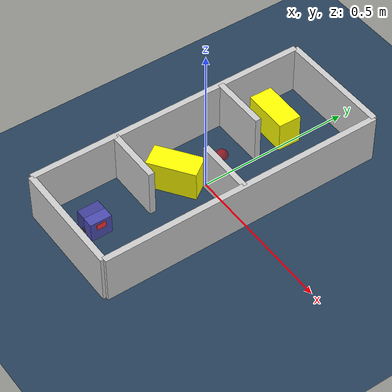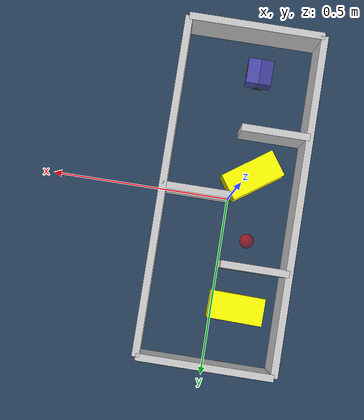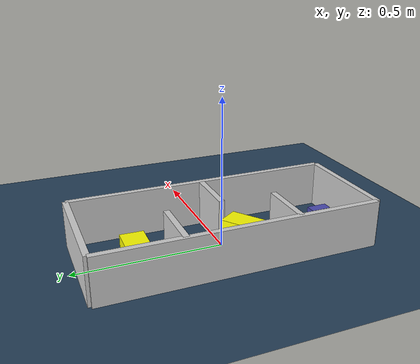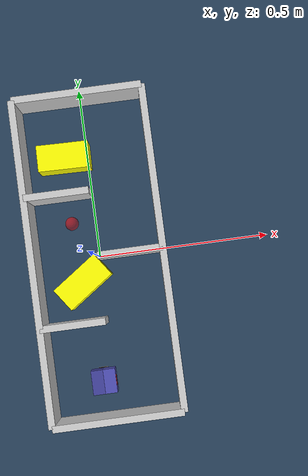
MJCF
<?xml version='1.0' encoding='utf-8'?>
<mujoco model="generated_environment">
  <option timestep="0.002" integrator="implicitfast" cone="elliptic" iterations="100" gravity="0 0 -9.81" />
  <default>
    <geom density="1" />
  </default>
  <asset>
    <texture builtin="gradient" height="3072" rgb1="0.3 0.5 0.7" rgb2="0 0 0" type="skybox" width="512" />
    <texture builtin="checker" height="300" mark="edge" markrgb="0.8 0.8 0.8" name="groundplane" rgb1="0.2 0.3 0.4" rgb2="0.1 0.2 0.3" type="2d" width="300" />
    <material name="groundplane" reflectance="0.2" texrepeat="5 5" texture="groundplane" texuniform="true" />
    <material name="robot" rgba="1.0 1.0 0.0 1.0" />
  </asset>
  <worldbody>
    <light dir="0 0 -1" directional="true" pos="0 0 1.5" />
    <geom condim="4" friction="0.5 0.005 0.001" material="groundplane" name="floor" size="0 0 0.05" type="plane" />
    <body name="walls">
      <geom name="wall_1" condim="4" pos="-0.186400 0.000000 0.080000" rgba="0.800000011920929 0.800000011920929 0.800000011920929 1.0" size="0.010000 0.466000 0.080000" type="box" />
      <geom name="wall_2" condim="4" pos="0.186400 0.000000 0.080000" rgba="0.800000011920929 0.800000011920929 0.800000011920929 1.0" size="0.010000 0.466000 0.080000" type="box" />
      <geom name="wall_3" condim="4" pos="0.000000 -0.466000 0.080000" rgba="0.800000011920929 0.800000011920929 0.800000011920929 1.0" size="0.186400 0.010000 0.080000" type="box" />
      <geom name="wall_4" condim="4" pos="0.000000 0.466000 0.080000" rgba="0.800000011920929 0.800000011920929 0.800000011920929 1.0" size="0.186400 0.010000 0.080000" type="box" />
      <geom name="wall_5" condim="4" pos="0.093200 0.000000 0.080000" rgba="0.800000011920929 0.800000011920929 0.800000011920929 1.0" size="0.093200 0.010000 0.080000" type="box" />
      <geom name="wall_6" condim="4" pos="-0.093200 -0.186400 0.080000" rgba="0.800000011920929 0.800000011920929 0.800000011920929 1.0" size="0.093200 0.010000 0.080000" type="box" />
      <geom name="wall_7" condim="4" pos="-0.093200 0.186400 0.080000" rgba="0.800000011920929 0.800000011920929 0.800000011920929 1.0" size="0.093200 0.010000 0.080000" type="box" />
    </body>
    <body name="car" pos="-0.03139999999999999 -0.36100000000000004 0.010000">
      <freejoint name="car_freejoint" />
      <inertial pos="0.000000 0 0.037500" mass="0.350000" diaginertia="0.000266 0.000266 0.000286" />
      <geom name="front_chassis_collision" type="box" pos="0.017500 0 0.037500" size="0.017500 0.035000 0.032500" rgba="0.3 0.3 0.7 1" />
      <geom name="rear_chassis_collision" type="box" pos="-0.017500 0 0.037500" size="0.017500 0.035000 0.032500" rgba="0.25 0.25 0.6 1" />
      <geom name="front_marker" type="box" pos="0.034000 0 0.050500" size="0.002000 0.015000 0.010000" rgba="1.0 0.2 0.2 1" contype="0" conaffinity="0" />
      <body name="rear_support_body" pos="-0.030000 0.000000 0.002500">
        <joint name="rear_caster_joint" type="ball" damping="0.0001" />
        <inertial pos="0 0 0" mass="0.025000" diaginertia="0.000001 0.000001 0.000001" />
        <geom name="rear_support" type="sphere" pos="0 0 0" size="0.002500" friction="0.000000 0.000000 0.000000" rgba="0.7 0.1 0.1 1" />
      </body>
      <body name="front_support_body" pos="0.030000 0.000000 0.002500">
        <joint name="front_caster_joint" type="ball" damping="0.0001" />
        <inertial pos="0 0 0" mass="0.025000" diaginertia="0.000001 0.000001 0.000001" />
        <geom name="front_support" type="sphere" pos="0 0 0" size="0.002500" friction="0.000000 0.000000 0.000000" rgba="0.1 0.7 0.1 1" />
      </body>
      <body name="left_wheel" pos="0.000000 0.037500 0.015000">
        <inertial pos="0 0 0" mass="0.050000" diaginertia="0.000003 0.000006 0.000003" />
        <joint name="left_wheel_joint" type="hinge" axis="0 1 0" damping="0.01" armature="0.0001" />
        <geom name="left_wheel_collision" type="cylinder" size="0.015000 0.000500" euler="90 0 0" rgba="0.1 0.1 0.1 1" />
      </body>
      <body name="right_wheel" pos="0.000000 -0.037500 0.015000">
        <inertial pos="0 0 0" mass="0.050000" diaginertia="0.000003 0.000006 0.000003" />
        <joint name="right_wheel_joint" type="hinge" axis="0 1 0" damping="0.01" armature="0.0001" />
        <geom name="right_wheel_collision" type="cylinder" size="0.015000 0.000500" euler="90 0 0" rgba="0.1 0.1 0.1 1" />
      </body>
    </body>
    <body name="obstacle_0_movable">
      <geom name="obstacle_0_movable" condim="4" pos="-0.06457253637252497 0.29895840126812795 0.05" euler="0 0 358.8619934232211" friction="1 0.005 0.0001" rgba="1 1 0 1" size="0.07530960937099597 0.03815711623521412 0.05" type="box" mass="0.1" />
      <joint type="free" />
    </body>
    <body name="obstacle_1_movable">
      <geom name="obstacle_1_movable" condim="4" pos="-0.05458596209708719 -0.06910405876705933 0.05" euler="0 0 305.16829020091814" friction="1 0.005 0.0001" rgba="1 1 0 1" size="0.03833607310504058 0.07807306666903804 0.05" type="box" mass="0.1" />
      <joint type="free" />
    </body>
    <site name="goal" type="sphere" pos="-0.07139999999999999 0.10899999999999993 0.0" size="0.02" rgba="1 0 0 0.5" />
  </worldbody>
  <actuator>
    <velocity name="left_wheel_drive" joint="left_wheel_joint" ctrlrange="-25.000000 25.000000" kv="0.750000" forcerange="-0.500000 0.500000" />
    <velocity name="right_wheel_drive" joint="right_wheel_joint" ctrlrange="-25.000000 25.000000" kv="0.750000" forcerange="-0.500000 0.500000" />
  </actuator>
</mujoco>
